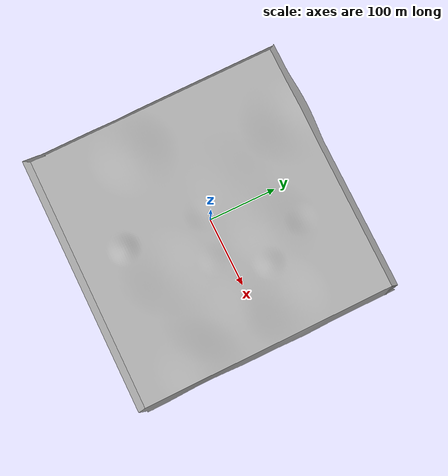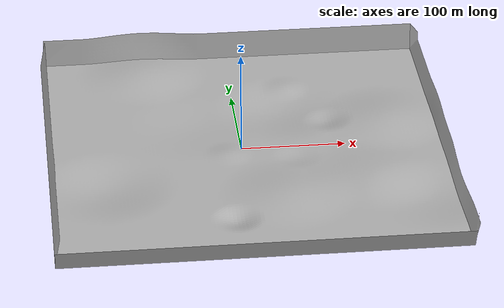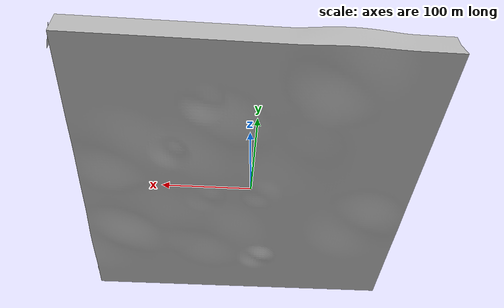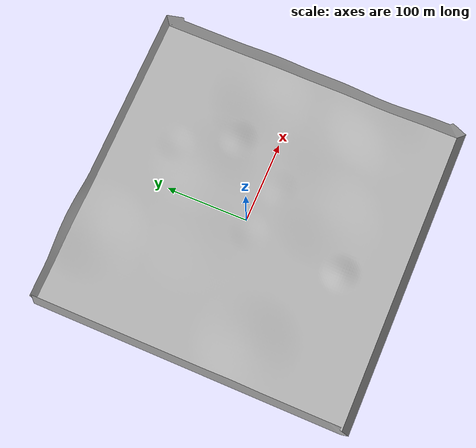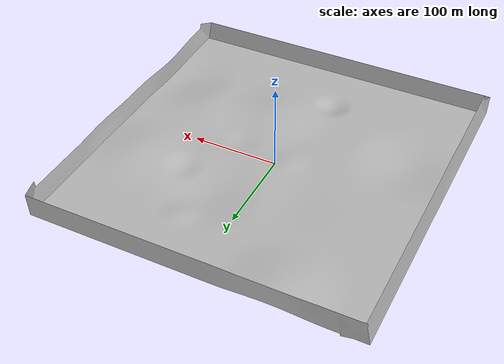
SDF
<?xml version="1.0" ?>
<sdf version="1.5">
  <model name="mud_plane">
    <pose>0 0 0 0 0 0</pose>
    <static>true</static>
    <link name="body">
     <collision name='collision'>
        <geometry>
            <mesh><uri>model://urdf/models/mud_plane/media/mud_plane.dae</uri></mesh>
          </geometry>
          <max_contacts>1</max_contacts>
          <surface>
            <friction>
              <ode>
                <mu>0.15</mu>
                <mu2>0.15</mu2>
              </ode>
              <torsional>
                <ode/>
              </torsional>
            </friction>
            <contact>
              <ode/>
            </contact>
            <bounce/>
          </surface>
        </collision>
      <visual name="visual">
         <cast_shadows>false</cast_shadows>
        <geometry>
          <mesh><uri>model://urdf/models/mud_plane/media/mud_plane.dae</uri></mesh>
        </geometry>
	    <material>
          <script>
            <uri>model://urdf/models/mud_plane/media/scripts</uri>
            <uri>model://urdf/models/mud_plane/media/Textures</uri>
            <name>MUD/StaticMUD</name>
          </script>
        </material>
      </visual>
    </link>
  </model>
</sdf>
